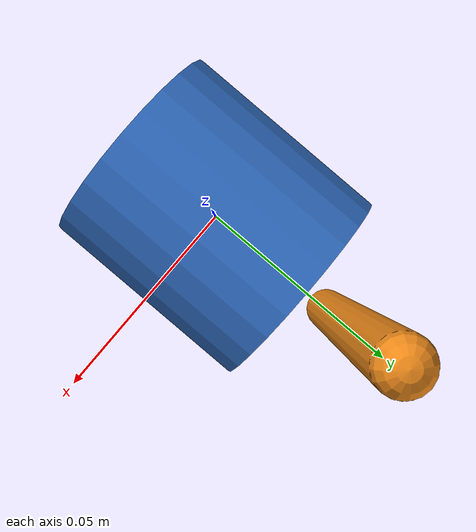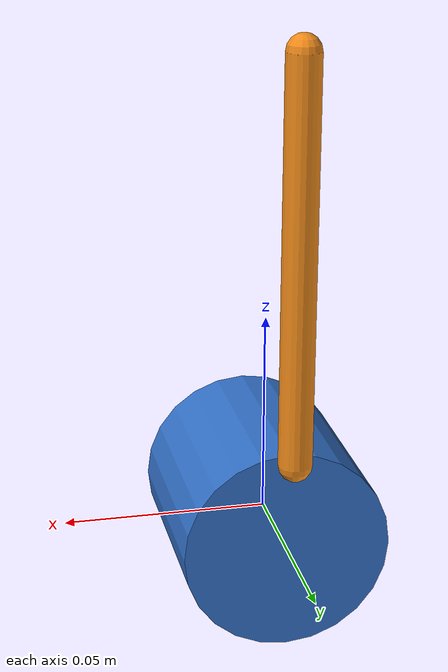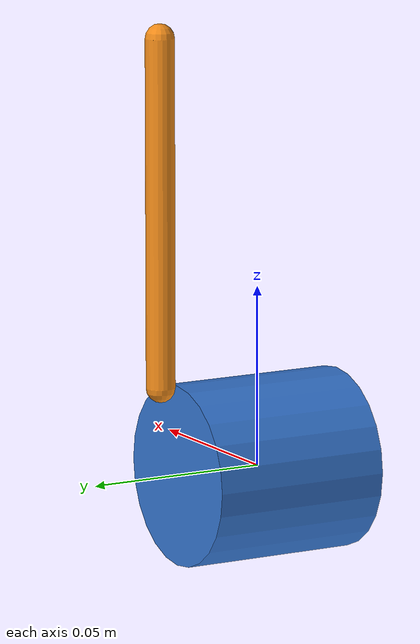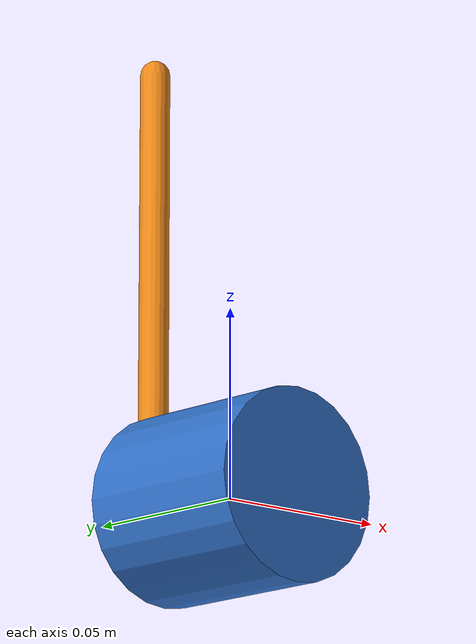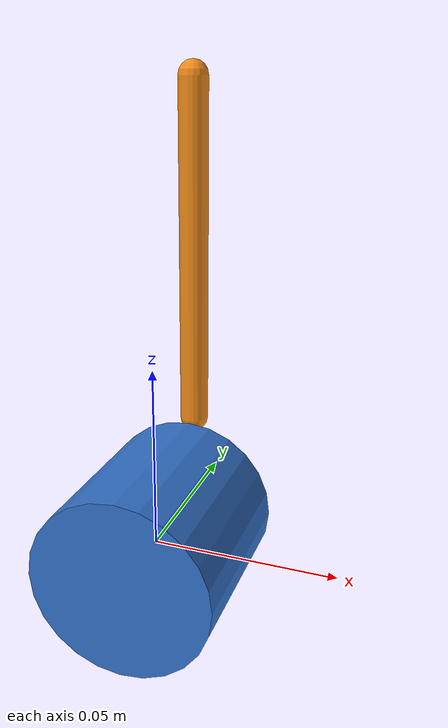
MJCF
<mujoco model="minimal_actuator">
  <option integrator="implicitfast" timestep="0.005" cone="elliptic" iterations="10" ls_iterations="20" impratio="10"/>

  <compiler angle="radian" autolimits="true"/>

  <include file="actuator.xml"/>

  <worldbody>
    <light pos="0 0 1.5"/>

    <geom name="housing" class="gm3506" type="cylinder" fromto="0 -0.025 0 0 0.025 0" size="0.025" rgba="0.2 0.45 0.8 1"/>

    <body name="actuator_output" pos="0 0 0">
      <inertial pos="0 0 0" mass="0.155" diaginertia="0.0000565 0.0000484 0.0000565"/>
      <joint name="actuator_joint" class="gm3506" type="hinge" axis="0 1 0" range="-3.14 3.14"/>
      <geom name="visual_arm" type="capsule" fromto="0 0.03 0.025 0 0.03 0.12" size="0.004" mass="0" contype="0" conaffinity="0" rgba="0.95 0.55 0.1 1"/>
    </body>
  </worldbody>

  <actuator>
    <position name="actuator_motor" class="gm3506" joint="actuator_joint" ctrlrange="-3.14 3.14"/>
  </actuator>

  <sensor>
    <jointpos name="actuator_angle" joint="actuator_joint"/>
    <jointvel name="actuator_velocity" joint="actuator_joint"/>
    <actuatorfrc name="actuator_torque" actuator="actuator_motor"/>
  </sensor>
</mujoco>

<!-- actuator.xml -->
<mujoco model="actuator">
  <default>
    <default class="gm3506">
      <geom contype="0" conaffinity="0" />
      <joint damping="0.648404" frictionloss="0.0353067" armature="0.00753139" />
      <position kp="105.936" kv="6.83938" forcerange="-2.68399 2.68399" />
    </default>
  </default>
</mujoco>
